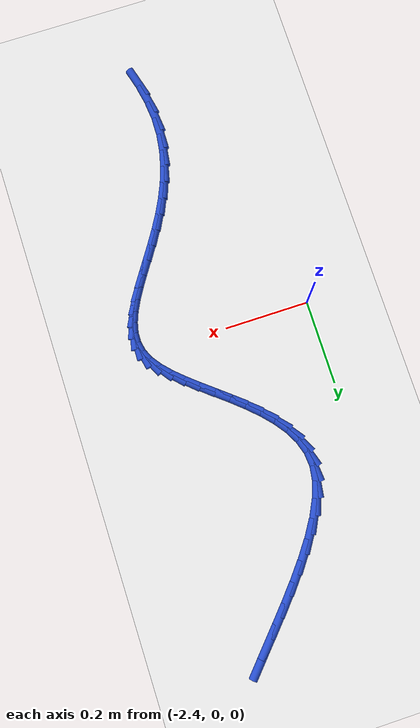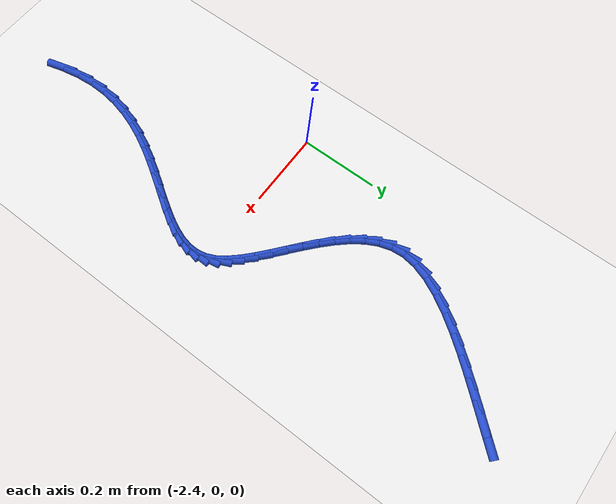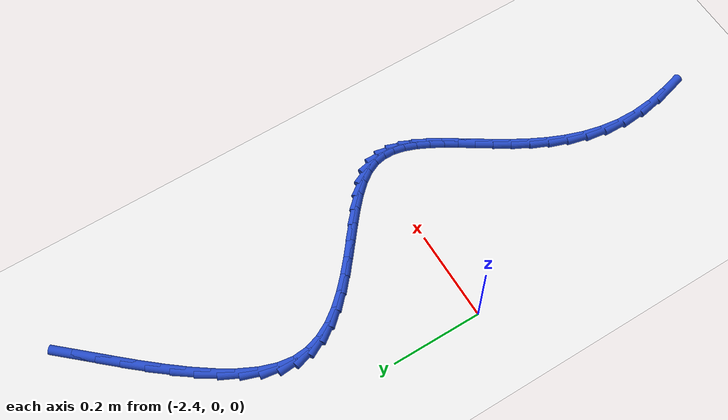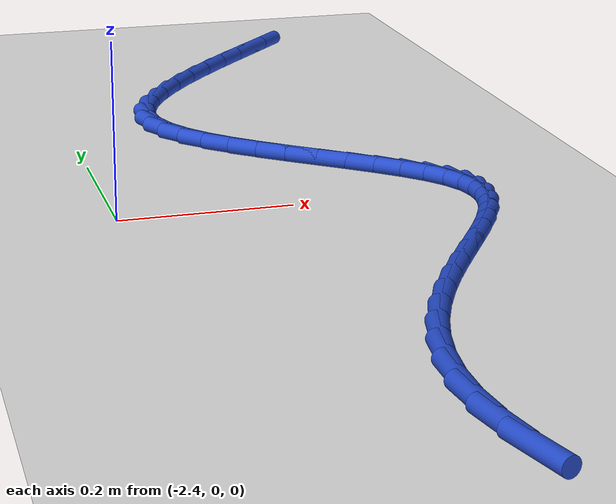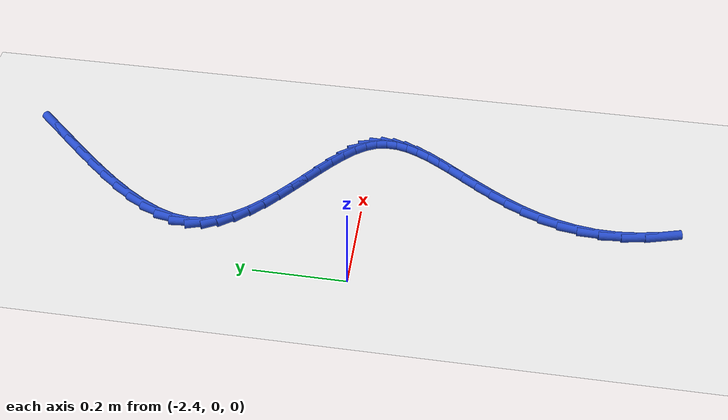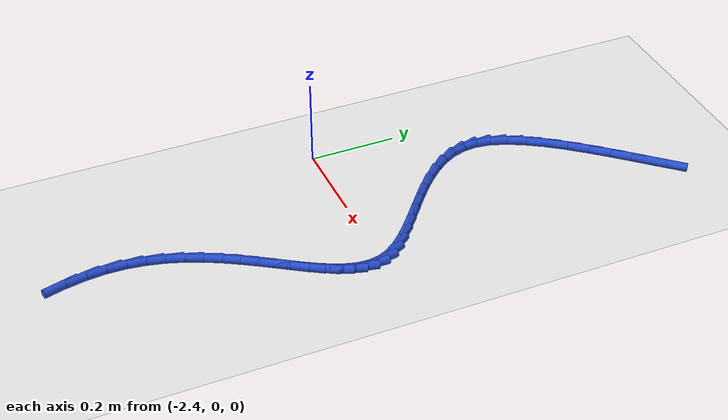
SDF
<sdf version="1.6">
 <world name="default">
  <model name="ground_plane">
   <static>1</static>
   <link name="link">
    <collision name="collision">
     <geometry><plane><normal>0 0 1</normal><size>100 100</size></plane></geometry>
     <surface><friction><ode><mu>100</mu><mu2>50</mu2></ode></friction></surface>
    </collision>
    <visual name="visual">
     <cast_shadows>0</cast_shadows>
     <geometry><plane><normal>0 0 1</normal><size>100 100</size></plane></geometry>
     <material>
      <script><uri>file://media/materials/scripts/gazebo.material</uri><name>Gazebo/WhiteGlow</name></script>
     </material>
    </visual>
   </link>
  </model>
  <model name="line">
   <link name="link_109">
    <pose>-2.042117172126353 0.734015340568012 0.01 0 1.57 0.8333897767669246</pose>
    <collision name="collision">
     <geometry><cylinder><radius>0.01</radius><length>0.08</length></cylinder></geometry>
    </collision>
    <visual name="visual">
     <material>
      <script><name>Gazebo/Blue</name><uri>file://media/materials/scripts/gazebo.material</uri></script>
     </material>
     <geometry><cylinder><radius>0.01</radius><length>0.08</length></cylinder></geometry>
    </visual>
   </link>
   <link name="link_110">
    <pose>-2.073829611770493 0.6991030138646207 0.01 0 1.57 0.8319332802812374</pose>
    <collision name="collision">
     <geometry><cylinder><radius>0.01</radius><length>0.08</length></cylinder></geometry>
    </collision>
    <visual name="visual">
     <material>
      <script><name>Gazebo/Blue</name><uri>file://media/materials/scripts/gazebo.material</uri></script>
     </material>
     <geometry><cylinder><radius>0.01</radius><length>0.08</length></cylinder></geometry>
    </visual>
   </link>
   <link name="link_111">
    <pose>-2.106949509454653 0.662747745451491 0.01 0 1.57 0.8416912468031907</pose>
    <collision name="collision">
     <geometry><cylinder><radius>0.01</radius><length>0.08</length></cylinder></geometry>
    </collision>
    <visual name="visual">
     <material>
      <script><name>Gazebo/Blue</name><uri>file://media/materials/scripts/gazebo.material</uri></script>
     </material>
     <geometry><cylinder><radius>0.01</radius><length>0.08</length></cylinder></geometry>
    </visual>
   </link>
   <link name="link_112">
    <pose>-2.140390643648718 0.6253125439402349 0.01 0 1.57 0.8625580989560332</pose>
    <collision name="collision">
     <geometry><cylinder><radius>0.01</radius><length>0.08</length></cylinder></geometry>
    </collision>
    <visual name="visual">
     <material>
      <script><name>Gazebo/Blue</name><uri>file://media/materials/scripts/gazebo.material</uri></script>
     </material>
     <geometry><cylinder><radius>0.01</radius><length>0.08</length></cylinder></geometry>
    </visual>
   </link>
   <link name="link_113">
    <pose>-2.1730667928225733 0.5871604179424673 0.01 0 1.57 0.895737030931725</pose>
    <collision name="collision">
     <geometry><cylinder><radius>0.01</radius><length>0.08</length></cylinder></geometry>
    </collision>
    <visual name="visual">
     <material>
      <script><name>Gazebo/Blue</name><uri>file://media/materials/scripts/gazebo.material</uri></script>
     </material>
     <geometry><cylinder><radius>0.01</radius><length>0.08</length></cylinder></geometry>
    </visual>
   </link>
   <link name="link_114">
    <pose>-2.2038917354461036 0.5486543760698007 0.01 0 1.57 0.9438759983577022</pose>
    <collision name="collision">
     <geometry><cylinder><radius>0.01</radius><length>0.08</length></cylinder></geometry>
    </collision>
    <visual name="visual">
     <material>
      <script><name>Gazebo/Blue</name><uri>file://media/materials/scripts/gazebo.material</uri></script>
     </material>
     <geometry><cylinder><radius>0.01</radius><length>0.08</length></cylinder></geometry>
    </visual>
   </link>
   <link name="link_115">
    <pose>-2.2317792499891937 0.5101574269338486 0.01 0 1.57 1.0115213851374054</pose>
    <collision name="collision">
     <geometry><cylinder><radius>0.01</radius><length>0.08</length></cylinder></geometry>
    </collision>
    <visual name="visual">
     <material>
      <script><name>Gazebo/Blue</name><uri>file://media/materials/scripts/gazebo.material</uri></script>
     </material>
     <geometry><cylinder><radius>0.01</radius><length>0.08</length></cylinder></geometry>
    </visual>
   </link>
   <link name="link_116">
    <pose>-2.255643114921728 0.47203257914622576 0.01 0 1.57 1.1058844677481356</pose>
    <collision name="collision">
     <geometry><cylinder><radius>0.01</radius><length>0.08</length></cylinder></geometry>
    </collision>
    <visual name="visual">
     <material>
      <script><name>Gazebo/Blue</name><uri>file://media/materials/scripts/gazebo.material</uri></script>
     </material>
     <geometry><cylinder><radius>0.01</radius><length>0.08</length></cylinder></geometry>
    </visual>
   </link>
   <link name="link_117">
    <pose>-2.2743971087135924 0.4346428413185451 0.01 0 1.57 1.2376647871771813</pose>
    <collision name="collision">
     <geometry><cylinder><radius>0.01</radius><length>0.08</length></cylinder></geometry>
    </collision>
    <visual name="visual">
     <material>
      <script><name>Gazebo/Blue</name><uri>file://media/materials/scripts/gazebo.material</uri></script>
     </material>
     <geometry><cylinder><radius>0.01</radius><length>0.08</length></cylinder></geometry>
    </visual>
   </link>
   <link name="link_118">
    <pose>-2.2869550098346716 0.3983512220624196 0.01 0 1.57 1.4204741139815245</pose>
    <collision name="collision">
     <geometry><cylinder><radius>0.01</radius><length>0.08</length></cylinder></geometry>
    </collision>
    <visual name="visual">
     <material>
      <script><name>Gazebo/Blue</name><uri>file://media/materials/scripts/gazebo.material</uri></script>
     </material>
     <geometry><cylinder><radius>0.01</radius><length>0.08</length></cylinder></geometry>
    </visual>
   </link>
   <link name="link_119">
    <pose>-2.2922306038433984 0.3635207283147411 0.01 0 1.57 -1.4894368414169774</pose>
    <collision name="collision">
     <geometry><cylinder><radius>0.01</radius><length>0.08</length></cylinder></geometry>
    </collision>
    <visual name="visual">
     <material>
      <script><name>Gazebo/Blue</name><uri>file://media/materials/scripts/gazebo.material</uri></script>
     </material>
     <geometry><cylinder><radius>0.01</radius><length>0.08</length></cylinder></geometry>
    </visual>
   </link>
   <link name="link_120">
    <pose>-2.2895316919303212 0.33042127786283704 0.01 0 1.57 -1.2654199007852007</pose>
    <collision name="collision">
     <geometry><cylinder><radius>0.01</radius><length>0.08</length></cylinder></geometry>
    </collision>
    <visual name="visual">
     <material>
      <script><name>Gazebo/Blue</name><uri>file://media/materials/scripts/gazebo.material</uri></script>
     </material>
     <geometry><cylinder><radius>0.01</radius><length>0.08</length></cylinder></geometry>
    </visual>
   </link>
   <link name="link_121">
    <pose>-2.279620012098689 0.2989792850124966 0.01 0 1.57 -1.079257967626583</pose>
    <collision name="collision">
     <geometry><cylinder><radius>0.01</radius><length>0.08</length></cylinder></geometry>
    </collision>
    <visual name="visual">
     <material>
      <script><name>Gazebo/Blue</name><uri>file://media/materials/scripts/gazebo.material</uri></script>
     </material>
     <geometry><cylinder><radius>0.01</radius><length>0.08</length></cylinder></geometry>
    </visual>
   </link>
   <link name="link_122">
    <pose>-2.263592587136482 0.2690419505233242 0.01 0 1.57 -0.9361513863063208</pose>
    <collision name="collision">
     <geometry><cylinder><radius>0.01</radius><length>0.08</length></cylinder></geometry>
    </collision>
    <visual name="visual">
     <material>
      <script><name>Gazebo/Blue</name><uri>file://media/materials/scripts/gazebo.material</uri></script>
     </material>
     <geometry><cylinder><radius>0.01</radius><length>0.08</length></cylinder></geometry>
    </visual>
   </link>
   <link name="link_123">
    <pose>-2.24254643983168 0.2404564751549239 0.01 0 1.57 -0.8315615556181265</pose>
    <collision name="collision">
     <geometry><cylinder><radius>0.01</radius><length>0.08</length></cylinder></geometry>
    </collision>
    <visual name="visual">
     <material>
      <script><name>Gazebo/Blue</name><uri>file://media/materials/scripts/gazebo.material</uri></script>
     </material>
     <geometry><cylinder><radius>0.01</radius><length>0.08</length></cylinder></geometry>
    </visual>
   </link>
   <link name="link_124">
    <pose>-2.217578592972263 0.2130700596669009 0.01 0 1.57 -0.758574801256655</pose>
    <collision name="collision">
     <geometry><cylinder><radius>0.01</radius><length>0.08</length></cylinder></geometry>
    </collision>
    <visual name="visual">
     <material>
      <script><name>Gazebo/Blue</name><uri>file://media/materials/scripts/gazebo.material</uri></script>
     </material>
     <geometry><cylinder><radius>0.01</radius><length>0.08</length></cylinder></geometry>
    </visual>
   </link>
   <link name="link_125">
    <pose>-2.189786069346212 0.18672990481885923 0.01 0 1.57 -0.711425398127825</pose>
    <collision name="collision">
     <geometry><cylinder><radius>0.01</radius><length>0.08</length></cylinder></geometry>
    </collision>
    <visual name="visual">
     <material>
      <script><name>Gazebo/Blue</name><uri>file://media/materials/scripts/gazebo.material</uri></script>
     </material>
     <geometry><cylinder><radius>0.01</radius><length>0.08</length></cylinder></geometry>
    </visual>
   </link>
   <link name="link_126">
    <pose>-2.160265891741506 0.16128321137040297 0.01 0 1.57 -0.6864678777270553</pose>
    <collision name="collision">
     <geometry><cylinder><radius>0.01</radius><length>0.08</length></cylinder></geometry>
    </collision>
    <visual name="visual">
     <material>
      <script><name>Gazebo/Blue</name><uri>file://media/materials/scripts/gazebo.material</uri></script>
     </material>
     <geometry><cylinder><radius>0.01</radius><length>0.08</length></cylinder></geometry>
    </visual>
   </link>
   <link name="link_127">
    <pose>-2.130115082946126 0.1365771800811373 0.01 0 1.57 -0.6823080199863027</pose>
    <collision name="collision">
     <geometry><cylinder><radius>0.01</radius><length>0.08</length></cylinder></geometry>
    </collision>
    <visual name="visual">
     <material>
      <script><name>Gazebo/Blue</name><uri>file://media/materials/scripts/gazebo.material</uri></script>
     </material>
     <geometry><cylinder><radius>0.01</radius><length>0.08</length></cylinder></geometry>
    </visual>
   </link>
   <link name="link_128">
    <pose>-2.100430665748052 0.11245901171066632 0.01 0 1.57 -0.6999398942415587</pose>
    <collision name="collision">
     <geometry><cylinder><radius>0.01</radius><length>0.08</length></cylinder></geometry>
    </collision>
    <visual name="visual">
     <material>
      <script><name>Gazebo/Blue</name><uri>file://media/materials/scripts/gazebo.material</uri></script>
     </material>
     <geometry><cylinder><radius>0.01</radius><length>0.08</length></cylinder></geometry>
    </visual>
   </link>
   <link name="link_129">
    <pose>-2.0723096629352638 0.08877590701859436 0.01 0 1.57 -0.7432686625176774</pose>
    <collision name="collision">
     <geometry><cylinder><radius>0.01</radius><length>0.08</length></cylinder></geometry>
    </collision>
    <visual name="visual">
     <material>
      <script><name>Gazebo/Blue</name><uri>file://media/materials/scripts/gazebo.material</uri></script>
     </material>
     <geometry><cylinder><radius>0.01</radius><length>0.08</length></cylinder></geometry>
    </visual>
   </link>
   <link name="link_130">
    <pose>-2.046849097295742 0.06537506676452601 0.01 0 1.57 -0.8202542457803259</pose>
    <collision name="collision">
     <geometry><cylinder><radius>0.01</radius><length>0.08</length></cylinder></geometry>
    </collision>
    <visual name="visual">
     <material>
      <script><name>Gazebo/Blue</name><uri>file://media/materials/scripts/gazebo.material</uri></script>
     </material>
     <geometry><cylinder><radius>0.01</radius><length>0.08</length></cylinder></geometry>
    </visual>
   </link>
   <link name="link_131">
    <pose>-2.025145991617467 0.042103691708065626 0.01 0 1.57 -0.9446157378766125</pose>
    <collision name="collision">
     <geometry><cylinder><radius>0.01</radius><length>0.08</length></cylinder></geometry>
    </collision>
    <visual name="visual">
     <material>
      <script><name>Gazebo/Blue</name><uri>file://media/materials/scripts/gazebo.material</uri></script>
     </material>
     <geometry><cylinder><radius>0.01</radius><length>0.08</length></cylinder></geometry>
    </visual>
   </link>
   <link name="link_132">
    <pose>-2.008297368688418 0.01880898260881761 0.01 0 1.57 -1.1349029340723156</pose>
    <collision name="collision">
     <geometry><cylinder><radius>0.01</radius><length>0.08</length></cylinder></geometry>
    </collision>
    <visual name="visual">
     <material>
      <script><name>Gazebo/Blue</name><uri>file://media/materials/scripts/gazebo.material</uri></script>
     </material>
     <geometry><cylinder><radius>0.01</radius><length>0.08</length></cylinder></geometry>
    </visual>
   </link>
   <link name="link_133">
    <pose>-1.9973655766918075 -0.004661210900369958 0.01 0 1.57 -1.371899212391315</pose>
    <collision name="collision">
     <geometry><cylinder><radius>0.01</radius><length>0.08</length></cylinder></geometry>
    </collision>
    <visual name="visual">
     <material>
      <script><name>Gazebo/Blue</name><uri>file://media/materials/scripts/gazebo.material</uri></script>
     </material>
     <geometry><cylinder><radius>0.01</radius><length>0.08</length></cylinder></geometry>
    </visual>
   </link>
   <link name="link_134">
    <pose>-1.992572008732563 -0.02844330221563999 0.01 0 1.57 1.5418862699666895</pose>
    <collision name="collision">
     <geometry><cylinder><radius>0.01</radius><length>0.08</length></cylinder></geometry>
    </collision>
    <visual name="visual">
     <material>
      <script><name>Gazebo/Blue</name><uri>file://media/materials/scripts/gazebo.material</uri></script>
     </material>
     <geometry><cylinder><radius>0.01</radius><length>0.08</length></cylinder></geometry>
    </visual>
   </link>
   <link name="link_135">
    <pose>-1.993272237730223 -0.052657502456099466 0.01 0 1.57 1.3518794556790887</pose>
    <collision name="collision">
     <geometry><cylinder><radius>0.01</radius><length>0.08</length></cylinder></geometry>
    </collision>
    <visual name="visual">
     <material>
      <script><name>Gazebo/Blue</name><uri>file://media/materials/scripts/gazebo.material</uri></script>
     </material>
     <geometry><cylinder><radius>0.01</radius><length>0.08</length></cylinder></geometry>
    </visual>
   </link>
   <link name="link_136">
    <pose>-1.9987821876544256 -0.07742328078163341 0.01 0 1.57 1.208694011261782</pose>
    <collision name="collision">
     <geometry><cylinder><radius>0.01</radius><length>0.08</length></cylinder></geometry>
    </collision>
    <visual name="visual">
     <material>
      <script><name>Gazebo/Blue</name><uri>file://media/materials/scripts/gazebo.material</uri></script>
     </material>
     <geometry><cylinder><radius>0.01</radius><length>0.08</length></cylinder></geometry>
    </visual>
   </link>
   <link name="link_137">
    <pose>-2.008417782474806 -0.1028601063521268 0.01 0 1.57 1.1082629023526642</pose>
    <collision name="collision">
     <geometry><cylinder><radius>0.01</radius><length>0.08</length></cylinder></geometry>
    </collision>
    <visual name="visual">
     <material>
      <script><name>Gazebo/Blue</name><uri>file://media/materials/scripts/gazebo.material</uri></script>
     </material>
     <geometry><cylinder><radius>0.01</radius><length>0.08</length></cylinder></geometry>
    </visual>
   </link>
   <link name="link_138">
    <pose>-2.021494946161002 -0.12908744832746455 0.01 0 1.57 1.042596823010483</pose>
    <collision name="collision">
     <geometry><cylinder><radius>0.01</radius><length>0.08</length></cylinder></geometry>
    </collision>
    <visual name="visual">
     <material>
      <script><name>Gazebo/Blue</name><uri>file://media/materials/scripts/gazebo.material</uri></script>
     </material>
     <geometry><cylinder><radius>0.01</radius><length>0.08</length></cylinder></geometry>
    </visual>
   </link>
   <link name="link_139">
    <pose>-2.037329602682651 -0.15622477586753172 0.01 0 1.57 1.0044776627986713</pose>
    <collision name="collision">
     <geometry><cylinder><radius>0.01</radius><length>0.08</length></cylinder></geometry>
    </collision>
    <visual name="visual">
     <material>
      <script><name>Gazebo/Blue</name><uri>file://media/materials/scripts/gazebo.material</uri></script>
     </material>
     <geometry><cylinder><radius>0.01</radius><length>0.08</length></cylinder></geometry>
    </visual>
   </link>
   <link name="link_140">
    <pose>-2.0552376760093893 -0.1843915581322142 0.01 0 1.57 0.9886349609291689</pose>
    <collision name="collision">
     <geometry><cylinder><radius>0.01</radius><length>0.08</length></cylinder></geometry>
    </collision>
    <visual name="visual">
     <material>
      <script><name>Gazebo/Blue</name><uri>file://media/materials/scripts/gazebo.material</uri></script>
     </material>
     <geometry><cylinder><radius>0.01</radius><length>0.08</length></cylinder></geometry>
    </visual>
   </link>
   <link name="link_141">
    <pose>-2.074535090110854 -0.21370726428139514 0.01 0 1.57 0.9915987666060109</pose>
    <collision name="collision">
     <geometry><cylinder><radius>0.01</radius><length>0.08</length></cylinder></geometry>
    </collision>
    <visual name="visual">
     <material>
      <script><name>Gazebo/Blue</name><uri>file://media/materials/scripts/gazebo.material</uri></script>
     </material>
     <geometry><cylinder><radius>0.01</radius><length>0.08</length></cylinder></geometry>
    </visual>
   </link>
   <link name="link_142">
    <pose>-2.0945377689566818 -0.2442913634749605 0.01 0 1.57 1.0112665871213227</pose>
    <collision name="collision">
     <geometry><cylinder><radius>0.01</radius><length>0.08</length></cylinder></geometry>
    </collision>
    <visual name="visual">
     <material>
      <script><name>Gazebo/Blue</name><uri>file://media/materials/scripts/gazebo.material</uri></script>
     </material>
     <geometry><cylinder><radius>0.01</radius><length>0.08</length></cylinder></geometry>
    </visual>
   </link>
   <link name="link_143">
    <pose>-2.1145616365165094 -0.2762633248727952 0.01 0 1.57 1.0464876670971766</pose>
    <collision name="collision">
     <geometry><cylinder><radius>0.01</radius><length>0.08</length></cylinder></geometry>
    </collision>
    <visual name="visual">
     <material>
      <script><name>Gazebo/Blue</name><uri>file://media/materials/scripts/gazebo.material</uri></script>
     </material>
     <geometry><cylinder><radius>0.01</radius><length>0.08</length></cylinder></geometry>
    </visual>
   </link>
   <link name="link_144">
    <pose>-2.1339226167599747 -0.30974261763478433 0.01 0 1.57 1.0966993624359813</pose>
    <collision name="collision">
     <geometry><cylinder><radius>0.01</radius><length>0.08</length></cylinder></geometry>
    </collision>
    <visual name="visual">
     <material>
      <script><name>Gazebo/Blue</name><uri>file://media/materials/scripts/gazebo.material</uri></script>
     </material>
     <geometry><cylinder><radius>0.01</radius><length>0.08</length></cylinder></geometry>
    </visual>
   </link>
   <link name="link_145">
    <pose>-2.1519366336567134 -0.34484871092081265 0.01 0 1.57 1.1615773796406335</pose>
    <collision name="collision">
     <geometry><cylinder><radius>0.01</radius><length>0.08</length></cylinder></geometry>
    </collision>
    <visual name="visual">
     <material>
      <script><name>Gazebo/Blue</name><uri>file://media/materials/scripts/gazebo.material</uri></script>
     </material>
     <geometry><cylinder><radius>0.01</radius><length>0.08</length></cylinder></geometry>
    </visual>
   </link>
   <link name="link_146">
    <pose>-2.1679196111763632 -0.38170107389076524 0.01 0 1.57 1.2406588083115337</pose>
    <collision name="collision">
     <geometry><cylinder><radius>0.01</radius><length>0.08</length></cylinder></geometry>
    </collision>
    <visual name="visual">
     <material>
      <script><name>Gazebo/Blue</name><uri>file://media/materials/scripts/gazebo.material</uri></script>
     </material>
     <geometry><cylinder><radius>0.01</radius><length>0.08</length></cylinder></geometry>
    </visual>
   </link>
   <link name="link_147">
    <pose>-2.181187473288561 -0.42041917570452736 0.01 0 1.57 1.3329325165715926</pose>
    <collision name="collision">
     <geometry><cylinder><radius>0.01</radius><length>0.08</length></cylinder></geometry>
    </collision>
    <visual name="visual">
     <material>
      <script><name>Gazebo/Blue</name><uri>file://media/materials/scripts/gazebo.material</uri></script>
     </material>
     <geometry><cylinder><radius>0.01</radius><length>0.08</length></cylinder></geometry>
    </visual>
   </link>
   <link name="link_148">
    <pose>-2.1910561439629435 -0.4611224855219836 0.01 0 1.57 1.436462494312933</pose>
    <collision name="collision">
     <geometry><cylinder><radius>0.01</radius><length>0.08</length></cylinder></geometry>
    </collision>
    <visual name="visual">
     <material>
      <script><name>Gazebo/Blue</name><uri>file://media/materials/scripts/gazebo.material</uri></script>
     </material>
     <geometry><cylinder><radius>0.01</radius><length>0.08</length></cylinder></geometry>
    </visual>
   </link>
   <link name="link_149">
    <pose>-2.196841547169148 -0.5039304725030205 0.01 0 1.57 1.5481927714119872</pose>
    <collision name="collision">
     <geometry><cylinder><radius>0.01</radius><length>0.08</length></cylinder></geometry>
    </collision>
    <visual name="visual">
     <material>
      <script><name>Gazebo/Blue</name><uri>file://media/materials/scripts/gazebo.material</uri></script>
     </material>
     <geometry><cylinder><radius>0.01</radius><length>0.08</length></cylinder></geometry>
    </visual>
   </link>
   <link name="link_150">
    <pose>-2.197859606876811 -0.5489626058075203 0.01 0 1.57 -1.477892338857197</pose>
    <collision name="collision">
     <geometry><cylinder><radius>0.01</radius><length>0.08</length></cylinder></geometry>
    </collision>
    <visual name="visual">
     <material>
      <script><name>Gazebo/Blue</name><uri>file://media/materials/scripts/gazebo.material</uri></script>
     </material>
     <geometry><cylinder><radius>0.01</radius><length>0.08</length></cylinder></geometry>
    </visual>
   </link>
   <link name="link_151">
    <pose>-2.193447055416789 -0.5963217032387705 0.01 0 1.57 -1.3766677933528249</pose>
    <collision name="collision">
     <geometry><cylinder><radius>0.01</radius><length>0.08</length></cylinder></geometry>
    </collision>
    <visual name="visual">
     <material>
      <script><name>Gazebo/Blue</name><uri>file://media/materials/scripts/gazebo.material</uri></script>
     </material>
     <geometry><cylinder><radius>0.01</radius><length>0.08</length></cylinder></geometry>
    </visual>
   </link>
   <link name="link_152">
    <pose>-2.1837923353400077 -0.6454290233728279 0.01 0 1.57 -1.3024379576012977</pose>
    <collision name="collision">
     <geometry><cylinder><radius>0.01</radius><length>0.08</length></cylinder></geometry>
    </collision>
    <visual name="visual">
     <material>
      <script><name>Gazebo/Blue</name><uri>file://media/materials/scripts/gazebo.material</uri></script>
     </material>
     <geometry><cylinder><radius>0.01</radius><length>0.08</length></cylinder></geometry>
    </visual>
   </link>
  </model>
 </world>
</sdf>
